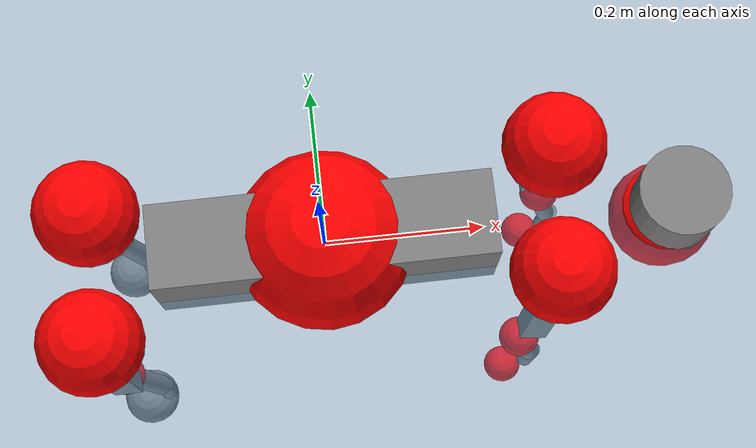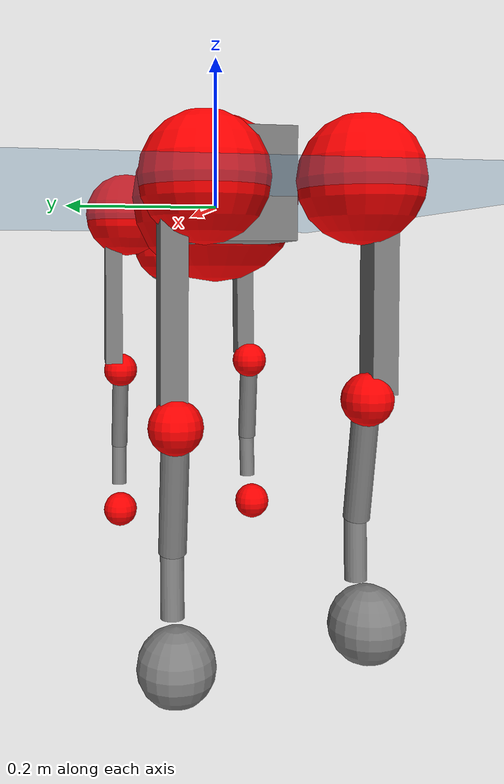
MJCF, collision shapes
<mujoco model="go2">
  <compiler angle="radian" assetdir="assets" balanceinertia="true" inertiafromgeom="false"/>

  <option timestep="0.005" density="1.2" viscosity="2e-05"/>

  <size nkey="1"/>

  <visual>
    <quality shadowsize="8192"/>
    <map shadowclip="0.5"/>
  </visual>

  <default>
    <default class="/">
      <geom contype="0" conaffinity="0" group="1" solref="-1000 -80"/>
      <site size="0.01 0.005 0.005" group="5"/>
      <general forcelimited="true" biastype="affine" gainprm="20" biasprm="0 -20 -0.5"/>
      <default class="go2">
        <joint armature="0.01" damping="0.01" frictionloss="0.2"/>
        <geom condim="1" margin="0.001"/>
        <default class="visual">
          <geom type="mesh" group="2"/>
        </default>
        <default class="collision">
          <geom group="3"/>
          <default class="foot">
            <geom size="0.022 0 0" condim="6" priority="1" friction="0.8 0.02 0.01" solimp="0.015 1 0.022"/>
          </default>
        </default>
        <default class="reward_collision_sphere">
          <geom group="5" rgba="1 0 0 1"/>
        </default>
      </default>
    </default>
  </default>

  <asset>
    <texture type="skybox" colorspace="auto" name="//unnamed_texture_0" builtin="gradient" rgb1="0.95 0.95 0.95" rgb2="0.95 0.95 0.95" width="100" height="600"/>
    <texture type="2d" colorspace="auto" name="texplane" builtin="checker" rgb1="0.345 0.575 0.748" rgb2="0.345 0.575 0.748" markrgb="1 1 1" width="512" height="512"/>
    <material name="MatPlane" class="/" texture="texplane" texuniform="true" texrepeat="2 2" specular="0.9"/>
    <material name="metal" class="/" rgba="0.9 0.95 0.95 1"/>
    <material name="black" class="/" rgba="0 0 0 1"/>
    <material name="white" class="/"/>
    <material name="gray" class="/" rgba="0.671705 0.692426 0.77427 1"/>
    <mesh name="base_0" class="/" file="base_0.obj"/>
    <mesh name="base_1" class="/" file="base_1.obj"/>
    <mesh name="base_2" class="/" file="base_2.obj"/>
    <mesh name="base_3" class="/" file="base_3.obj"/>
    <mesh name="base_4" class="/" file="base_4.obj"/>
    <mesh name="hip_0" class="/" file="hip_0.obj"/>
    <mesh name="hip_1" class="/" file="hip_1.obj"/>
    <mesh name="thigh_0" class="/" file="thigh_0.obj"/>
    <mesh name="thigh_1" class="/" file="thigh_1.obj"/>
    <mesh name="thigh_mirror_0" class="/" file="thigh_mirror_0.obj"/>
    <mesh name="thigh_mirror_1" class="/" file="thigh_mirror_1.obj"/>
    <mesh name="calf_0" class="/" file="calf_0.obj"/>
    <mesh name="calf_1" class="/" file="calf_1.obj"/>
    <mesh name="calf_mirror_0" class="/" file="calf_mirror_0.obj"/>
    <mesh name="calf_mirror_1" class="/" file="calf_mirror_1.obj"/>
    <mesh name="foot" class="/" file="foot.obj"/>
  </asset>

  <worldbody>
    <geom name="floor" class="/" size="100 100 0.125" type="plane" group="0" material="MatPlane"/>
    <light name="toplight_shadow" class="/" pos="0 0 5" dir="0.0990148 0.0990148 -0.990148" type="directional" ambient="0.04 0.04 0.04" diffuse="0.55 0.55 0.55" specular="0.12 0.12 0.12"/>
    <light name="toplight_fill" class="/" pos="0 0 5" dir="0.0990148 0.0990148 -0.990148" type="directional" castshadow="false" ambient="0.04 0.04 0.04" diffuse="0.3 0.3 0.3" specular="0.08 0.08 0.08"/>
    <body name="trunk" childclass="go2" pos="-0.000963197 0.000335521 0.0129636" quat="0.999999 -0.000574498 0.000677486 0.00121384">
      <inertial pos="0.028863 -0.0168135 -0.0200041" quat="-0.000781255 0.713802 -0.000255641 0.700347" mass="10.2263" diaginertia="0.877448 0.0174549 0.0516463"/>
      <joint name="//unnamed_joint_0" type="free" armature="0" damping="0" frictionloss="0"/>
      <geom name="//unnamed_geom_1" class="visual" material="black" mesh="base_0"/>
      <geom name="//unnamed_geom_2" class="visual" material="black" mesh="base_1"/>
      <geom name="//unnamed_geom_3" class="visual" material="black" mesh="base_2"/>
      <geom name="//unnamed_geom_4" class="visual" material="white" mesh="base_3"/>
      <geom name="//unnamed_geom_5" class="visual" material="gray" mesh="base_4"/>
      <geom name="trunk_1" class="collision" size="0.211697 0.0526147 0.0641505" type="box"/>
      <geom name="trunk_2" class="collision" size="0.0562724 0.0506452" pos="0.442434 0 0.0112504" type="cylinder"/>
      <geom name="trunk_3" class="collision" size="0.052896" pos="0.454853 0 -0.0675022"/>
      <geom name="//unnamed_geom_9" class="reward_collision_sphere" size="0.112545"/>
      <geom name="//unnamed_geom_10" class="reward_collision_sphere" size="0.0675269" pos="0.434672 0 -0.0506267"/>
      <site name="imu" pos="-0.0816348 0.054678 0.00379238" size="0.0112545"/>
      <camera name="track" pos="0 -1.39781 0" quat="0.707107 0.707107 0 0" mode="trackcom"/>
      <camera name="ego_camera" pos="0.484348 0 0.0506267" quat="-0.5 -0.5 0.5 0.5"/>
      <body name="FL_hip" pos="0.303586 0.0443632 -0.00424296" quat="0.999994 0.00177414 -0.00313079 6.35418e-05">
        <inertial pos="0.00680056 0.00445769 0.0105191" quat="0.515509 0.501047 0.503728 0.47902" mass="1.15432" diaginertia="0.00874386 0.000123469 0.000815067"/>
        <joint name="FL_hip_joint" pos="0 0 0" axis="0.999969 -0.00468485 0.00631313" range="-0.856752 1.02579" armature="0.00414788" damping="0" frictionloss="0.390362"/>
        <geom name="//unnamed_geom_11" class="visual" material="metal" mesh="hip_0"/>
        <geom name="//unnamed_geom_12" class="visual" material="gray" mesh="hip_1"/>
        <geom name="//unnamed_geom_13" class="collision" size="0.0517706 0.022509" pos="0 0.0559126 0" quat="0.707107 0.707107 0 0" type="cylinder"/>
        <geom name="//unnamed_geom_14" class="reward_collision_sphere" size="0.0675269" pos="0 0.0489235 0"/>
        <body name="FL_thigh" pos="0.00114475 0.071699 -0.00955016" quat="1 0.000119659 5.17495e-05 -0.000243381">
          <inertial pos="-0.00257718 -0.01371 -0.0259901" quat="0.828497 0.100319 -0.0253836 0.550349" mass="1.79021" diaginertia="0.0508824 0.000961417 0.00230739"/>
          <joint name="FL_thigh_joint" pos="0 0 0" axis="-0.0248907 0.998801 -0.0421621" stiffness="0.0375408" range="-1.32711 3.30093" armature="0.00661629" damping="0.00775257" frictionloss="0.174411"/>
          <geom name="//unnamed_geom_15" class="visual" material="metal" mesh="thigh_0"/>
          <geom name="//unnamed_geom_16" class="visual" material="gray" mesh="thigh_1"/>
          <geom name="//unnamed_geom_17" class="collision" size="0.11986 0.0137867 0.0191326" pos="0 0 -0.119816" quat="0.707107 0 0.707107 0" type="box"/>
          <body name="FL_calf" pos="0.00955341 -0.0127797 -0.253306" quat="0.999967 0.00310372 0.00606071 -0.00444946">
            <inertial pos="0.0136998 -0.00102221 -0.157838" quat="0.709856 -0.00176339 -0.00796355 0.7043" mass="0.44509" diaginertia="0.0130034 0.000249528 0.00010636"/>
            <joint name="FL_calf_joint" pos="0 0 0" axis="-0.00670899 0.999359 -0.0351516" range="-2.82278 -0.71987" armature="0.0171387" damping="0" frictionloss="0.371329"/>
            <geom name="//unnamed_geom_18" class="visual" material="gray" mesh="calf_0"/>
            <geom name="//unnamed_geom_19" class="visual" material="black" mesh="calf_1"/>
            <geom name="FL_calf0" class="collision" size="0.0135054 0.0675269" pos="0.0124192 0 -0.0675022" quat="0.994493 0 -0.104807 0" type="cylinder"/>
            <geom name="//unnamed_geom_21" class="collision" size="0.0123799 0.0365771" pos="0.031048 0 -0.166506" quat="0.999688 0 0.0249974 0" type="cylinder"/>
            <geom name="//unnamed_geom_22" class="visual" pos="0 0 -0.239633" quat="1 0 0 0" material="black" mesh="foot"/>
            <geom name="FL_foot" class="foot" size="0.0114856" pos="-0.0031048 0 -0.239633"/>
            <geom name="//unnamed_geom_24" class="reward_collision_sphere" size="0.0281362"/>
            <geom name="//unnamed_geom_25" class="reward_collision_sphere" size="0.0281362" pos="-0.0031048 0 -0.239633"/>
            <site name="FL_foot" class="foot" pos="-0.0031048 0 -0.239633" size="0.0112545"/>
          </body>
        </body>
      </body>
      <body name="FR_hip" pos="0.292017 -0.0211022 2.07476e-05" quat="0.999974 -0.00248987 0.00192801 -0.00649269">
        <inertial pos="-0.00662626 -0.00667484 0.00559224" quat="0.502474 0.498877 0.497906 0.500731" mass="1.04363" diaginertia="0.010007 0.000134222 0.000830006"/>
        <joint name="FR_hip_joint" pos="0 0 0" axis="0.999935 -0.00954815 0.00624613" range="-1.3244 1.37052" armature="0.0128428" damping="0" frictionloss="0.36048"/>
        <geom name="//unnamed_geom_26" class="visual" pos="0 -3.71227e-09 -1.59227e-07" quat="4.63268e-05 1 0 0" material="metal" mesh="hip_0"/>
        <geom name="//unnamed_geom_27" class="visual" pos="0 -6.01803e-09 3.93829e-07" quat="4.63268e-05 1 0 0" material="gray" mesh="hip_1"/>
        <geom name="//unnamed_geom_28" class="collision" size="0.0517706 0.022509" pos="0 -0.0559126 0" quat="0.707107 0.707107 0 0" type="cylinder"/>
        <geom name="//unnamed_geom_29" class="reward_collision_sphere" size="0.0675269" pos="0 -0.0489235 0"/>
        <body name="FR_thigh" pos="-0.0175992 -0.0778353 0.00154124" quat="0.999993 -0.00322532 -0.00184944 0.000828279">
          <inertial pos="-0.00853135 0.0207663 -0.0363978" quat="0.545111 -0.0202745 0.0870516 0.833586" mass="1.4381" diaginertia="0.050069 0.000845585 0.00113412"/>
          <joint name="FR_thigh_joint" pos="0 0 0" axis="0.0519623 -0.996585 0.0641731" stiffness="0.0072226" range="-3.85319 1.89505" armature="0.00973741" damping="0.07148" frictionloss="0.300997"/>
          <geom name="//unnamed_geom_30" class="visual" material="metal" mesh="thigh_mirror_0"/>
          <geom name="//unnamed_geom_31" class="visual" material="gray" mesh="thigh_mirror_1"/>
          <geom name="//unnamed_geom_32" class="collision" size="0.11986 0.0137867 0.0191326" pos="0 0 -0.119816" quat="0.707107 0 0.707107 0" type="box"/>
          <body name="FR_calf" pos="-0.0165649 -0.00635638 -0.250172" quat="0.999995 -0.00260405 -0.000274495 0.00153819">
            <inertial pos="0.0187112 0.00715724 -0.176522" quat="0.698753 -0.00998687 -0.0356621 0.714404" mass="0.415661" diaginertia="0.0112985 0.000247955 9.72418e-05"/>
            <joint name="FR_calf_joint" pos="0 0 0" axis="0.0823381 -0.99583 0.0392931" stiffness="0.0423446" range="0.688706 3.01575" armature="0.0113392" damping="0" frictionloss="0.429376"/>
            <geom name="//unnamed_geom_33" class="visual" material="gray" mesh="calf_mirror_0"/>
            <geom name="//unnamed_geom_34" class="visual" material="black" mesh="calf_mirror_1"/>
            <geom name="FR_calf0" class="collision" size="0.0146308 0.0675269" pos="0.015524 0 -0.0675022" quat="0.995004 0 -0.0998334 0" type="cylinder"/>
            <geom name="//unnamed_geom_36" class="collision" size="0.0123799 0.0365771" pos="0.031048 0 -0.166506" quat="0.999688 0 0.0249974 0" type="cylinder"/>
            <geom name="//unnamed_geom_37" class="visual" pos="0 0 -0.239633" quat="1 0 0 0" material="black" mesh="foot"/>
            <geom name="FR_foot" class="foot" size="0.0187538" pos="-0.0031048 0 -0.239633"/>
            <geom name="//unnamed_geom_39" class="reward_collision_sphere" size="0.0281362"/>
            <geom name="//unnamed_geom_40" class="reward_collision_sphere" size="0.0281362" pos="-0.0031048 0 -0.239633"/>
            <site name="FR_foot" class="foot" pos="-0.0031048 0 -0.239633" size="0.0112545"/>
          </body>
        </body>
      </body>
      <body name="RL_hip" pos="-0.293653 0.0193012 -0.00418378" quat="0.999997 0.000230268 -0.00175259 -0.00162934">
        <inertial pos="0.0186692 0.0162234 -0.00587691" quat="0.507159 0.45782 0.569995 0.456395" mass="1.19532" diaginertia="0.00717892 8.46222e-05 0.000974322"/>
        <joint name="RL_hip_joint" pos="0 0 0" axis="-0.997872 0.0322754 -0.056651" stiffness="0.067673" range="-1.18176 1.25222" armature="0.0107527" damping="0.0716198" frictionloss="0.106545"/>
        <geom name="//unnamed_geom_41" class="visual" pos="-3.723e-09 0 -7.29793e-07" quat="4.63268e-05 0 1 0" material="metal" mesh="hip_0"/>
        <geom name="//unnamed_geom_42" class="visual" pos="-6.03543e-09 0 -6.47223e-07" quat="4.63268e-05 0 1 0" material="gray" mesh="hip_1"/>
        <geom name="//unnamed_geom_43" class="collision" size="0.0517706 0.022509" pos="0 0.0559126 0" quat="0.707107 0.707107 0 0" type="cylinder"/>
        <geom name="//unnamed_geom_44" class="reward_collision_sphere" size="0.0675269" pos="0 0.0489235 0"/>
        <body name="RL_thigh" pos="-0.00102232 0.0818036 -0.00483975" quat="0.999986 0.00213265 0.002309 -0.0043356">
          <inertial pos="0.00251122 -0.00277379 -0.0358364" quat="0.845119 0.108126 -0.0385952 0.522104" mass="1.53931" diaginertia="0.0457996 0.000881109 0.00109847"/>
          <joint name="RL_thigh_joint" pos="0 0 0" axis="0.0117608 0.999901 -0.00777192" range="-0.517187 4.5073" armature="0.01237" damping="0.0485038" frictionloss="0.218944"/>
          <geom name="//unnamed_geom_45" class="visual" material="metal" mesh="thigh_0"/>
          <geom name="//unnamed_geom_46" class="visual" material="gray" mesh="thigh_1"/>
          <geom name="//unnamed_geom_47" class="collision" size="0.11986 0.0137867 0.0191326" pos="0 0 -0.119816" quat="0.707107 0 0.707107 0" type="box"/>
          <body name="RL_calf" pos="-0.0135604 -0.00213874 -0.243774" quat="0.999974 -0.000243663 0.00623607 -0.00371253">
            <inertial pos="-0.0040628 0.00782359 -0.146552" quat="0.712135 -0.000764406 -0.00433251 0.702028" mass="0.314366" diaginertia="0.0113008 0.000149393 5.61587e-05"/>
            <joint name="RL_calf_joint" pos="0 0 0" axis="0.0520804 0.998267 -0.0274009" range="-2.71071 -0.461603" armature="0.0127235" damping="0" frictionloss="0.110639"/>
            <geom name="//unnamed_geom_48" class="visual" material="gray" mesh="calf_0"/>
            <geom name="//unnamed_geom_49" class="visual" material="black" mesh="calf_1"/>
            <geom name="RL_calf0" class="collision" size="0.0146308 0.0675269" pos="0.015524 0 -0.0675022" quat="0.995004 0 -0.0998334 0" type="cylinder"/>
            <geom name="//unnamed_geom_51" class="collision" size="0.0123799 0.0365771" pos="0.031048 0 -0.166506" quat="0.999688 0 0.0249974 0" type="cylinder"/>
            <geom name="//unnamed_geom_52" class="visual" pos="0 0 -0.239633" quat="1 0 0 0" material="black" mesh="foot"/>
            <geom name="RL_foot" class="foot" size="0.040259" pos="-0.0031048 0 -0.239633"/>
            <geom name="//unnamed_geom_54" class="reward_collision_sphere" size="0.0281362"/>
            <geom name="//unnamed_geom_55" class="reward_collision_sphere" size="0.0281362" pos="-0.0031048 0 -0.239633"/>
            <site name="RL_foot" class="foot" pos="-0.0031048 0 -0.239633" size="0.0112545"/>
          </body>
        </body>
      </body>
      <body name="RR_hip" pos="-0.298527 -0.0464993 -0.00410736" quat="0.999971 -0.00226395 0.00200634 0.00699694">
        <inertial pos="0.0018443 -0.0116137 0.00954833" quat="0.544645 0.475616 0.533321 0.438999" mass="1.21627" diaginertia="0.00783055 0.000129305 0.00100476"/>
        <joint name="RR_hip_joint" pos="0 0 0" axis="-0.999132 0.0408183 0.00831078" stiffness="0.0377508" range="-0.747225 0.910065" armature="0.0206435" damping="0.00750972" frictionloss="0.091587"/>
        <geom name="//unnamed_geom_56" class="visual" pos="3.69345e-09 -3.71227e-09 -5.70567e-07" quat="2.14617e-09 4.63268e-05 4.63268e-05 -1" material="metal" mesh="hip_0"/>
        <geom name="//unnamed_geom_57" class="visual" pos="6.10851e-09 -6.01803e-09 -1.04105e-06" quat="2.14617e-09 4.63268e-05 4.63268e-05 -1" material="gray" mesh="hip_1"/>
        <geom name="//unnamed_geom_58" class="collision" size="0.0517706 0.022509" pos="0 -0.0559126 0" quat="0.707107 0.707107 0 0" type="cylinder"/>
        <geom name="//unnamed_geom_59" class="reward_collision_sphere" size="0.0675269" pos="0 -0.0489235 0"/>
        <body name="RR_thigh" pos="0.00516225 -0.0713412 0.0168506" quat="0.999997 0.00224745 5.67868e-05 -0.00087114">
          <inertial pos="-0.00615904 -0.00281359 -0.0479631" quat="0.567067 0.0434845 0.0617147 0.820204" mass="2.04829" diaginertia="0.0689588 0.00123779 0.00205474"/>
          <joint name="RR_thigh_joint" pos="0 0 0" axis="0.0504133 -0.998175 -0.0332493" range="-4.72446 0.850581" armature="0.00013518" damping="0.000968564" frictionloss="0.135901"/>
          <geom name="//unnamed_geom_60" class="visual" material="metal" mesh="thigh_mirror_0"/>
          <geom name="//unnamed_geom_61" class="visual" material="gray" mesh="thigh_mirror_1"/>
          <geom name="//unnamed_geom_62" class="collision" size="0.11986 0.0137867 0.0191326" pos="0 0 -0.119816" quat="0.707107 0 0.707107 0" type="box"/>
          <body name="RR_calf" pos="-0.00445235 0.0139177 -0.245302" quat="0.999978 -0.00137755 -0.00625536 0.00173708">
            <inertial pos="-0.000532506 0.00269957 -0.157738" quat="0.651087 0.0315142 0.0342067 0.757577" mass="0.466115" diaginertia="0.0140244 0.000302716 8.33017e-05"/>
            <joint name="RR_calf_joint" pos="0 0 0" axis="0.0792767 -0.996812 0.00899474" range="0.555348 2.41055" armature="0.013019" damping="0.00165604" frictionloss="0.164048"/>
            <geom name="//unnamed_geom_63" class="visual" material="gray" mesh="calf_mirror_0"/>
            <geom name="//unnamed_geom_64" class="visual" material="black" mesh="calf_mirror_1"/>
            <geom name="RR_calf0" class="collision" size="0.0146308 0.0675269" pos="0.015524 0 -0.0675022" quat="0.995004 0 -0.0998334 0" type="cylinder"/>
            <geom name="//unnamed_geom_66" class="collision" size="0.0123799 0.0365771" pos="0.031048 0 -0.166506" quat="0.999688 0 0.0249974 0" type="cylinder"/>
            <geom name="//unnamed_geom_67" class="visual" pos="0 0 -0.239633" quat="1 0 0 0" material="black" mesh="foot"/>
            <geom name="RR_foot" class="foot" size="0.0416267" pos="-0.0031048 0 -0.239633"/>
            <geom name="//unnamed_geom_69" class="reward_collision_sphere" size="0.0281362"/>
            <geom name="//unnamed_geom_70" class="reward_collision_sphere" size="0.0281362" pos="-0.0031048 0 -0.239633"/>
            <site name="RR_foot" class="foot" pos="-0.0031048 0 -0.239633" size="0.0112545"/>
          </body>
        </body>
      </body>
    </body>
  </worldbody>

  <contact>
    <pair class="/" geom1="floor" geom2="FL_foot" name="//unnamed_contact_0"/>
    <pair class="/" geom1="floor" geom2="FR_foot" name="//unnamed_contact_1"/>
    <pair class="/" geom1="floor" geom2="RL_foot" name="//unnamed_contact_2"/>
    <pair class="/" geom1="floor" geom2="RR_foot" name="//unnamed_contact_3"/>
  </contact>

  <actuator>
    <general name="FL_hip" class="/" joint="FL_hip_joint" forcerange="-37.7462 37.7462" gainprm="13.23" biasprm="0 -13.23 -0.429823"/>
    <general name="FL_thigh" class="/" joint="FL_thigh_joint" forcerange="-44.7172 44.7172" gainprm="13.23" biasprm="0 -13.23 -0.429823"/>
    <general name="FL_calf" class="/" joint="FL_calf_joint" forcerange="-37.5055 37.5055" gainprm="13.23" biasprm="0 -13.23 -0.429823"/>
    <general name="FR_hip" class="/" joint="FR_hip_joint" forcerange="-34.4572 34.4572" gainprm="13.23" biasprm="0 -13.23 -0.429823"/>
    <general name="FR_thigh" class="/" joint="FR_thigh_joint" forcerange="-18.2071 18.2071" gainprm="13.23" biasprm="0 -13.23 -0.429823"/>
    <general name="FR_calf" class="/" joint="FR_calf_joint" forcerange="-70.0979 70.0979" gainprm="13.23" biasprm="0 -13.23 -0.429823"/>
    <general name="RL_hip" class="/" joint="RL_hip_joint" forcerange="-14.377 14.377" gainprm="13.23" biasprm="0 -13.23 -0.429823"/>
    <general name="RL_thigh" class="/" joint="RL_thigh_joint" forcerange="-26.3954 26.3954" gainprm="13.23" biasprm="0 -13.23 -0.429823"/>
    <general name="RL_calf" class="/" joint="RL_calf_joint" forcerange="-71.5716 71.5716" gainprm="13.23" biasprm="0 -13.23 -0.429823"/>
    <general name="RR_hip" class="/" joint="RR_hip_joint" forcerange="-44.4654 44.4654" gainprm="13.23" biasprm="0 -13.23 -0.429823"/>
    <general name="RR_thigh" class="/" joint="RR_thigh_joint" forcerange="-32.6239 32.6239" gainprm="13.23" biasprm="0 -13.23 -0.429823"/>
    <general name="RR_calf" class="/" joint="RR_calf_joint" forcerange="-63.6414 63.6414" gainprm="13.23" biasprm="0 -13.23 -0.429823"/>
  </actuator>

  <sensor>
    <gyro site="imu" name="imu_angular_velocity"/>
    <velocimeter site="imu" name="imu_linear_velocity"/>
    <framelinvel objtype="site" objname="FL_foot" name="FL_foot_global_linear_velocity"/>
    <framelinvel objtype="site" objname="FR_foot" name="FR_foot_global_linear_velocity"/>
    <framelinvel objtype="site" objname="RL_foot" name="RL_foot_global_linear_velocity"/>
    <framelinvel objtype="site" objname="RR_foot" name="RR_foot_global_linear_velocity"/>
  </sensor>

  <keyframe>
    <key name="home" qpos="0 0 0.325 1 0 0 0 0.1 0.8 -1.5 -0.1 -0.8 1.5 -0.1 0.8 -1.5 0.1 -0.8 1.5"/>
  </keyframe>
</mujoco>
